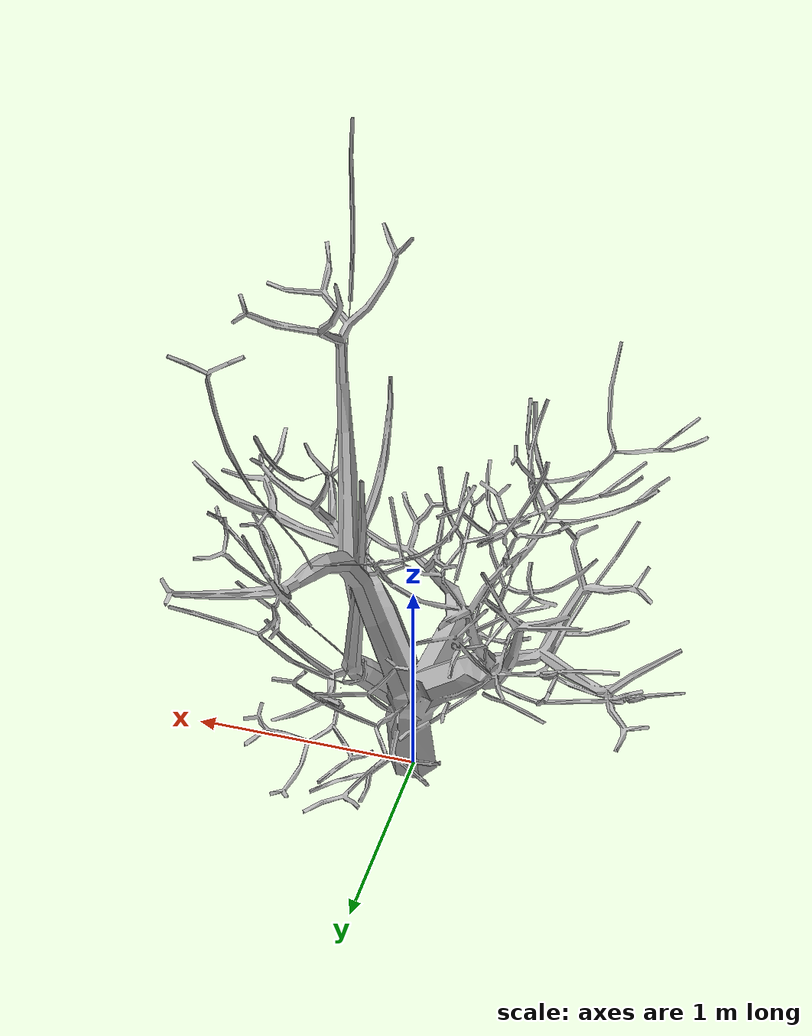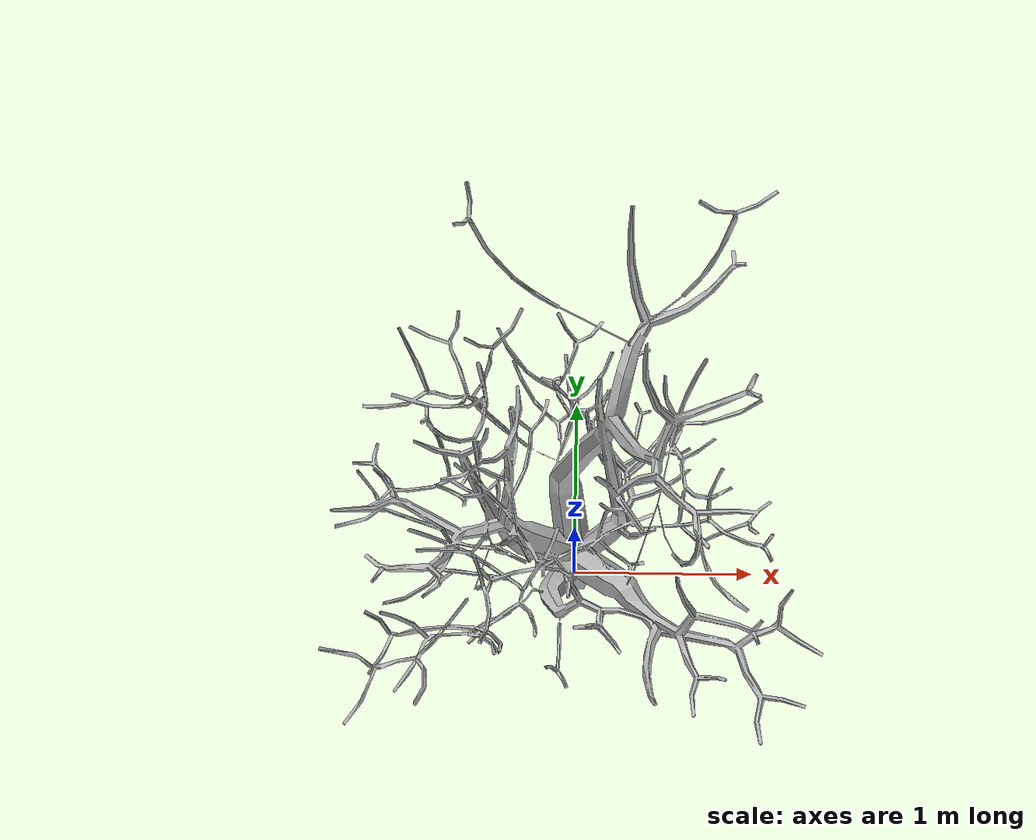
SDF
<?xml version="1.0" ?>
<sdf version="1.6">
  <model name="random_tree_1">
    <static>true</static>
    <link name="link">
      <visual name="visual">
        <geometry>
          <mesh>
            <uri>model://random_tree_1/meshes/random_tree_1.dae</uri>
          </mesh>
        </geometry>
      </visual>
      <collision name="collision">
        <geometry>
          <mesh>
            <uri>model://random_tree_1/meshes/random_tree_1.dae</uri>
          </mesh>
        </geometry>
      </collision>
    </link>
  </model>
</sdf>
